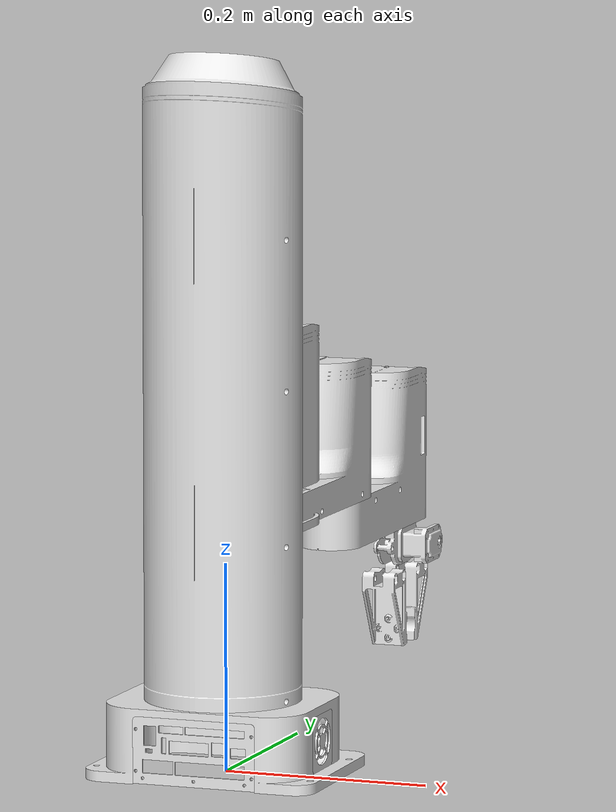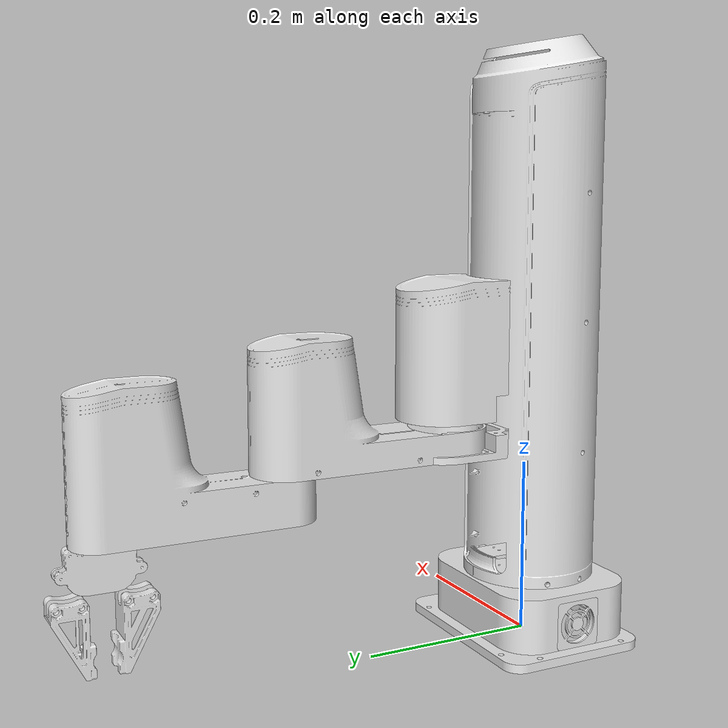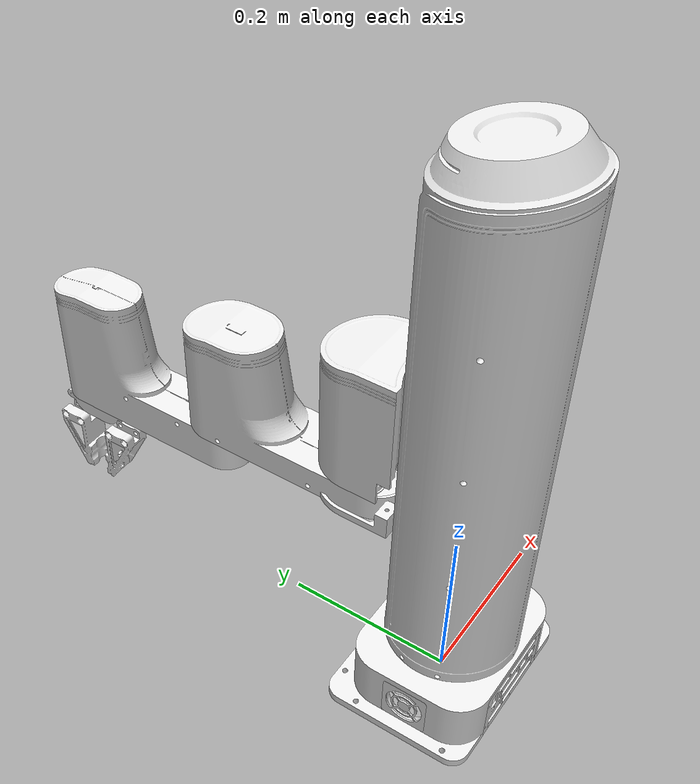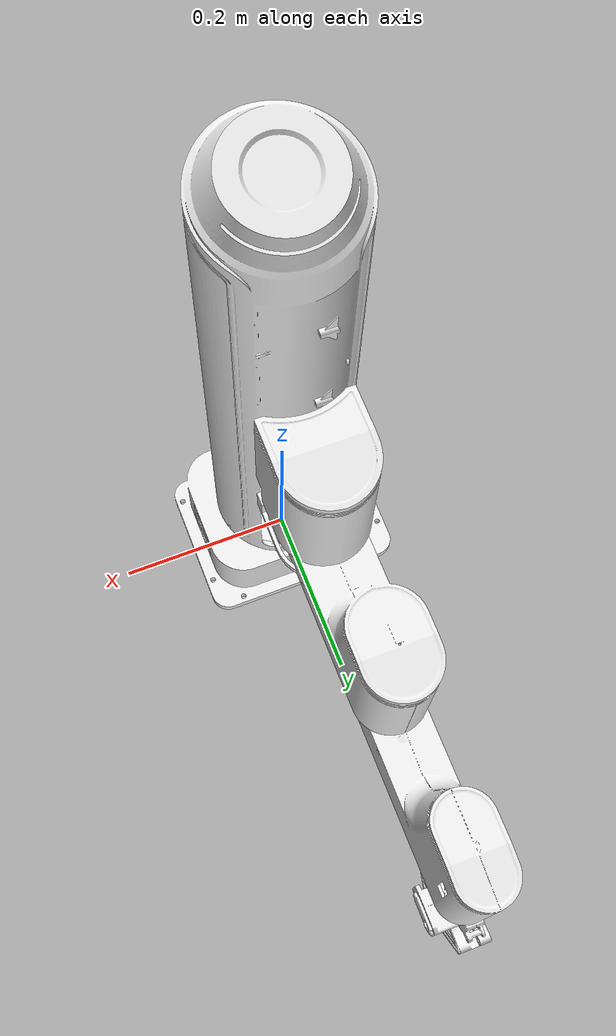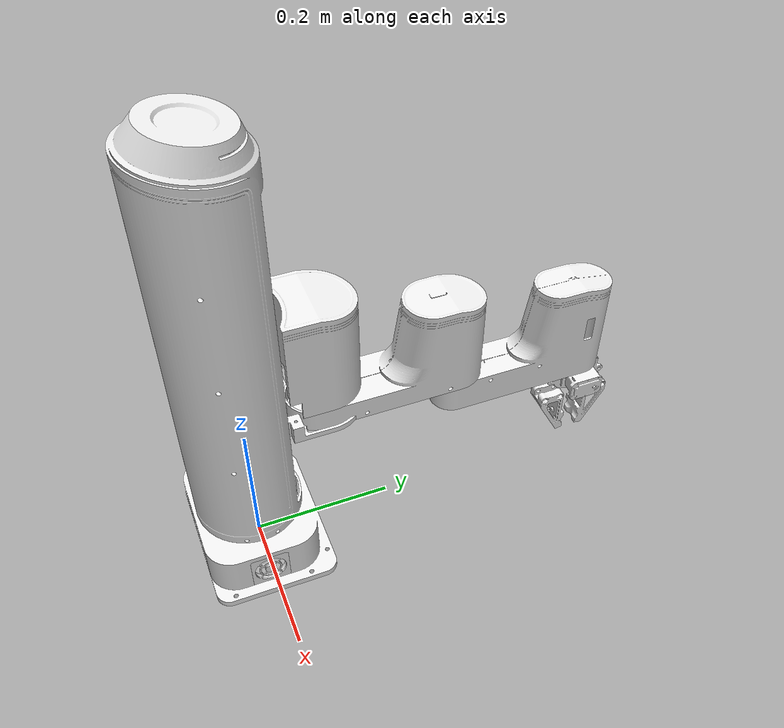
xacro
<?xml version="1.0"?>
<robot xmlns:xacro="http://ros.org/wiki/xacro" name="Eddie">

  <xacro:include filename="$(find dobot_m1_description)/model/dobot_m1.urdf.xacro" />

  <!--link name="world" /-->

  <xacro:dobot_m1 name="dobot_m1">
    <origin xyz="0.0 0.0 0.0"/>
  </xacro:dobot_m1>

</robot>

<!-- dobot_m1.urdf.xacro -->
<robot xmlns:xacro="http://ros.org/wiki/xacro" >

  <xacro:include filename="$(find dobot_m1_description)/model/materials.urdf"/>
  <xacro:include filename="$(find dobot_m1_description)/model/dobot_m1.inertia.xacro"/>
  <xacro:include filename="$(find dobot_m1_description)/model/dobot_m1.transmission.xacro"/>
  <xacro:include filename="$(find dobot_m1_description)/model/dobot_m1.gazebo.xacro"/>

  <xacro:property name="M_PI" value="3.1415926535897931" />
  <xacro:property name="velocity_scale_factor" value="1.0"/>

  <xacro:macro name="dobot_m1" params="name *origin">

    <!-- The base fixed to its parent. -->

    <link name="${name}_base_link">
      <visual>
        <origin xyz="0 0 0" rpy="0 0 0"/>
        <geometry>
          <mesh filename="package://dobot_m1_description/meshes/dobot_m1_base.stl" scale="0.001 0.001 0.001" />
        </geometry>
        <material name="Dobot/White"/>
      </visual>
      <collision>
        <origin xyz="0 0 0.045" rpy="0 0 0"/>
        <geometry>
          <cylinder radius="0.12" length="0.09"/>
        </geometry>
      </collision>
    </link>

    <!-- Stand fixed to the base -->
    <joint name="${name}_stand_joint" type="fixed">
      <origin xyz="0 0 0" rpy="0 0 0"/>
      <parent link="${name}_base_link"/>
      <child link="${name}_stand_link"/>
    </joint>

    <link name="${name}_stand_link">
      <inertial>
        <xacro:insert_block name="negligible_inertia"/>
      </inertial>
      <visual>
        <origin xyz="0 0 0" rpy="0 0 0"/>
        <geometry>
          <mesh filename="package://dobot_m1_description/meshes/dobot_m1_stand.stl" scale="0.001 0.001 0.001" />
        </geometry>
        <material name="Dobot/White"/>
      </visual>
      <collision>
        <origin xyz="0 0 0.4" rpy="0 0 0"/>
        <geometry>
          <cylinder radius="0.09" length="0.65"/>
        </geometry>
      </collision>
    </link>

    <!-- Z-Axis -->
    <joint name="${name}_z_axis_joint" type="prismatic">
      <origin xyz="0 0.1 0.097" rpy="0 0 0"/>
      <axis xyz="0 0 1"/>
          <limit lower="0.02" upper="0.23" effort="20.0" velocity="0.02" />
            <dynamics friction="1.0" damping="1.0"/>
      <parent link="${name}_stand_link"/>
      <child link="${name}_z_axis_link"/>
    </joint>

    <link name="${name}_z_axis_link">
      <inertial>
        <xacro:insert_block name="negligible_inertia"/>
      </inertial>
      <visual>
        <origin xyz="0 0 0" rpy="0 0 0"/>
        <geometry>
          <mesh filename="package://dobot_m1_description/meshes/dobot_m1_z-axis.stl" scale="0.001 0.001 0.001" />
        </geometry>
        <material name="Dobot/White"/>
      </visual>
      <collision>
        <origin xyz="0 0 0.1" rpy="0 0 0"/>
        <geometry>
          <cylinder radius="0.07" length="0.2"/>
        </geometry>
      </collision>
    </link>

    <!-- 2-Axis -->
    <joint name="${name}_axis_2_joint" type="revolute">
      <origin xyz="0 0 0" rpy="0 0 0"/>
      <axis xyz="0 0 1"/>
      <limit lower="${-85 * M_PI / 180}" upper="${85 * M_PI / 180}"
             effort="204" velocity="${velocity_scale_factor * 180 * M_PI / 180}" />
      <safety_controller soft_lower_limit="${-84 * M_PI / 180}"
                         soft_upper_limit="${84 * M_PI / 180}"
                         k_position="30"
                         k_velocity="30"/>
      <dynamics friction="1.0" damping="1.0"/>
      <parent link="${name}_z_axis_link"/>
      <child link="${name}_axis_2_link"/>
    </joint>

    <link name="${name}_axis_2_link">
      <inertial>
        <xacro:insert_block name="negligible_inertia"/>
      </inertial>
      <visual>
        <origin xyz="0 0.1 0" rpy="0 0 0"/>
        <geometry>
          <mesh filename="package://dobot_m1_description/meshes/dobot_m1_axis-2.stl" scale="0.001 0.001 0.001" />
        </geometry>
        <material name="Dobot/White"/>
      </visual>
      <collision>
        <origin xyz="0 0 0.1" rpy="0 0 0"/>
        <geometry>
          <cylinder radius="0.07" length="0.2"/>
        </geometry>
      </collision>
    </link>

    <!-- 3-Axis -->
    <joint name="${name}_axis_3_joint" type="revolute">
      <origin xyz="0 0.2 -0.05" rpy="0 0 0"/>
      <axis xyz="0 0 1"/>
      <limit lower="${-135 * M_PI / 180}" upper="${135 * M_PI / 180}"
             effort="204" velocity="${velocity_scale_factor * 180 * M_PI / 180}" />
      <safety_controller soft_lower_limit="${-134 * M_PI / 180}"
                         soft_upper_limit="${134 * M_PI / 180}"
                         k_position="30"
                         k_velocity="30"/>
      <dynamics friction="1.0" damping="1.0"/>
      <parent link="${name}_axis_2_link"/>
      <child link="${name}_axis_3_link"/>
    </joint>

    <link name="${name}_axis_3_link">
      <inertial>
        <xacro:insert_block name="negligible_inertia"/>
      </inertial>
      <visual>
        <origin xyz="0 0.1 0" rpy="0 0 0"/>
        <geometry>
          <mesh filename="package://dobot_m1_description/meshes/dobot_m1_axis-3.stl" scale="0.001 0.001 0.001" />
        </geometry>
        <material name="Dobot/White"/>
      </visual>
      <collision>
        <origin xyz="0 0 0.1" rpy="0 0 0"/>
        <geometry>
          <cylinder radius="0.07" length="0.2"/>
        </geometry>
      </collision>
    </link>

    <!-- 4-Axis -->
    <joint name="${name}_axis_4_joint" type="fixed">
      <origin xyz="0 0.2 0" rpy="0 0 0"/>
      <axis xyz="0 0 1"/>
      <dynamics friction="1.0" damping="1.0"/>
      <parent link="${name}_axis_3_link"/>
      <child link="${name}_axis_4_link"/>
    </joint>

    <link name="${name}_axis_4_link">
      <inertial>
        <xacro:insert_block name="negligible_inertia"/>
      </inertial>
      <visual>
        <origin xyz="0 0 0" rpy="0 0 0"/>
        <geometry>
          <mesh filename="package://dobot_m1_description/meshes/dobot_m1_axis-4.stl" scale="0.001 0.001 0.001" />
        </geometry>
        <material name="Dobot/White"/>
      </visual>
      <collision>
        <origin xyz="0 0 0.09" rpy="0 0 0"/>
        <geometry>
          <cylinder radius="0.07" length="0.18"/>
        </geometry>
      </collision>
    </link>

	<!-- Gripper -->
    <joint name="${name}_gripper_joint" type="revolute">
      <origin xyz="0 0 0" rpy="0 0 0"/>
      <axis xyz="0 0 1"/>
      <parent link="${name}_axis_4_link"/>
      <child link="${name}_gripper_link"/>
      <limit effort="30" lower="${-M_PI}" upper="${M_PI}" velocity="10"/>
    </joint>

  <link name="${name}_gripper_link">
    <inertial>
      <xacro:insert_block name="negligible_inertia"/>
    </inertial>
    <visual>
      <origin rpy="0 0 1.5707963268" xyz="0 0 0"/>
      <geometry>
        <mesh filename="package://nkg_robot_description/meshes/NKG_ARM_BOX.stl" scale="0.001 0.001 0.001"/>
      </geometry>
      <material name="Dobot/White"/>
    </visual>
    <collision>
      <origin rpy="0 0 1.5707963268" xyz="0 0 0"/>
      <geometry>
        <mesh filename="package://nkg_robot_description/meshes/NKG_ARM_BOX.stl" scale="0.001 0.001 0.001"/>
      </geometry>
    </collision>
  </link>

  <link name="grip_l_l_link">
    <inertial>
      <xacro:insert_block name="negligible_inertia"/>
    </inertial>
    <visual>
      <origin rpy="1.5707963268 0 1.5707963268" xyz="0 -0.013 -0.005"/>
      <geometry>
        <mesh filename="package://nkg_robot_description/meshes/NKG_ARM_GRIPPER.stl" scale="0.001 0.001 0.001"/>
      </geometry>
      <material name="Dobot/White"/>
    </visual>
    <collision>
      <origin rpy="1.5707963268 0 1.5707963268" xyz="0 -0.013 -0.005"/>
      <geometry>
        <mesh filename="package://nkg_robot_description/meshes/NKG_ARM_GRIPPER.stl" scale="0.001 0.001 0.001"/>
      </geometry>
    </collision>
  </link>
  <joint name="M14_joint" type="prismatic">
    <parent link="${name}_gripper_link"/>
    <child link="grip_l_l_link"/>
    <origin rpy="0 0 0" xyz="0 0 -0.125"/>
    <axis xyz="0 1 0"/>
    <limit effort="300.0" lower="-0.0220" upper="0.013" velocity="1.0"/>
  </joint>
  <link name="grip_l_r_link">
    <inertial>
      <xacro:insert_block name="negligible_inertia"/>
    </inertial>
    <visual>
      <origin rpy="1.5707963268 0 -1.5707963268" xyz="0 0.01 -0.005"/>
      <geometry>
        <mesh filename="package://nkg_robot_description/meshes/NKG_ARM_GRIPPER.stl" scale="0.001 0.001 0.001"/>
      </geometry>
      <material name="Dobot/White"/>
    </visual>
    <collision>
      <origin rpy="1.5707963268 0 -1.5707963268" xyz="0 0.01 -0.005"/>
      <geometry>
        <mesh filename="package://nkg_robot_description/meshes/NKG_ARM_GRIPPER.stl" scale="0.001 0.001 0.001"/>
      </geometry>
    </collision>
  </link>
  <joint name="grip_l_r_joint" type="fixed">
    <parent link="${name}_gripper_link"/>
    <child link="grip_l_r_link"/>
    <origin rpy="0 0 0" xyz="0 0 -0.125"/>
  </joint>

    <xacro:dobot_m1_transmission name="${name}"/>
    <xacro:dobot_m1_gazebo name="${name}"/>
  </xacro:macro>

</robot>
